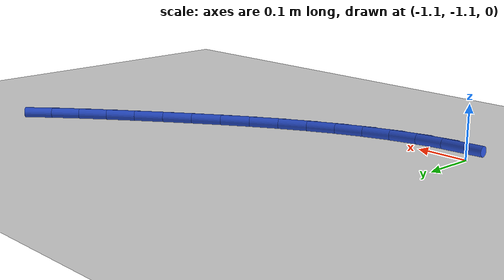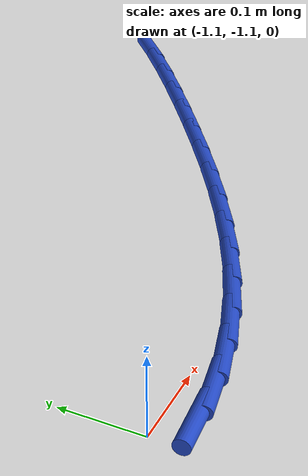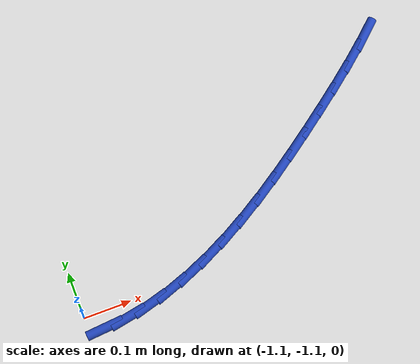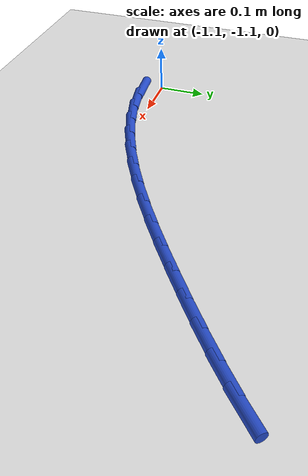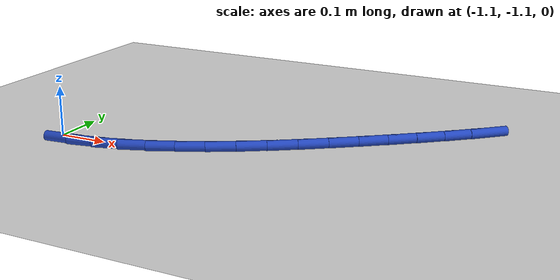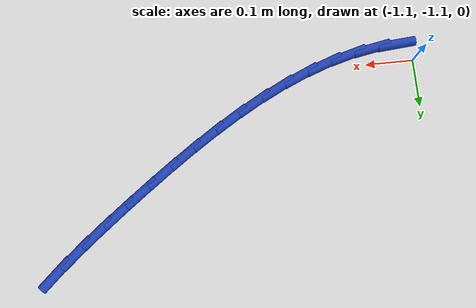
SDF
<sdf version="1.6">
 <world name="default">
  <model name="ground_plane">
   <static>1</static>
   <link name="link">
    <collision name="collision">
     <geometry><plane><normal>0 0 1</normal><size>100 100</size></plane></geometry>
     <surface><friction><ode><mu>100</mu><mu2>50</mu2></ode></friction></surface>
    </collision>
    <visual name="visual">
     <cast_shadows>0</cast_shadows>
     <geometry><plane><normal>0 0 1</normal><size>100 100</size></plane></geometry>
     <material>
      <script><uri>file://media/materials/scripts/gazebo.material</uri><name>Gazebo/WhiteGlow</name></script>
     </material>
    </visual>
   </link>
  </model>
  <model name="line">
   <link name="link_90">
    <pose>-1.0681190715513247 -1.1363492569885045 0.01 0 1.57 0.0856603087453602</pose>
    <collision name="collision">
     <geometry><cylinder><radius>0.01</radius><length>0.08</length></cylinder></geometry>
    </collision>
    <visual name="visual">
     <material>
      <script><name>Gazebo/Blue</name><uri>file://media/materials/scripts/gazebo.material</uri></script>
     </material>
     <geometry><cylinder><radius>0.01</radius><length>0.08</length></cylinder></geometry>
    </visual>
   </link>
   <link name="link_91">
    <pose>-1.0162148792671655 -1.1318922210687115 0.01 0 1.57 0.18759308360960497</pose>
    <collision name="collision">
     <geometry><cylinder><radius>0.01</radius><length>0.08</length></cylinder></geometry>
    </collision>
    <visual name="visual">
     <material>
      <script><name>Gazebo/Blue</name><uri>file://media/materials/scripts/gazebo.material</uri></script>
     </material>
     <geometry><cylinder><radius>0.01</radius><length>0.08</length></cylinder></geometry>
    </visual>
   </link>
   <link name="link_92">
    <pose>-0.9643338886728717 -1.1220439096033654 0.01 0 1.57 0.2770660141894901</pose>
    <collision name="collision">
     <geometry><cylinder><radius>0.01</radius><length>0.08</length></cylinder></geometry>
    </collision>
    <visual name="visual">
     <material>
      <script><name>Gazebo/Blue</name><uri>file://media/materials/scripts/gazebo.material</uri></script>
     </material>
     <geometry><cylinder><radius>0.01</radius><length>0.08</length></cylinder></geometry>
    </visual>
   </link>
   <link name="link_93">
    <pose>-0.9125690177223091 -1.107322994654457 0.01 0 1.57 0.3543660661757517</pose>
    <collision name="collision">
     <geometry><cylinder><radius>0.01</radius><length>0.08</length></cylinder></geometry>
    </collision>
    <visual name="visual">
     <material>
      <script><name>Gazebo/Blue</name><uri>file://media/materials/scripts/gazebo.material</uri></script>
     </material>
     <geometry><cylinder><radius>0.01</radius><length>0.08</length></cylinder></geometry>
    </visual>
   </link>
   <link name="link_94">
    <pose>-0.8610131843693452 -1.0882481482839768 0.01 0 1.57 0.4203501837310764</pose>
    <collision name="collision">
     <geometry><cylinder><radius>0.01</radius><length>0.08</length></cylinder></geometry>
    </collision>
    <visual name="visual">
     <material>
      <script><name>Gazebo/Blue</name><uri>file://media/materials/scripts/gazebo.material</uri></script>
     </material>
     <geometry><cylinder><radius>0.01</radius><length>0.08</length></cylinder></geometry>
    </visual>
   </link>
   <link name="link_95">
    <pose>-0.8097593065678449 -1.0653380425539154 0.01 0 1.57 0.47610845510683886</pose>
    <collision name="collision">
     <geometry><cylinder><radius>0.01</radius><length>0.08</length></cylinder></geometry>
    </collision>
    <visual name="visual">
     <material>
      <script><name>Gazebo/Blue</name><uri>file://media/materials/scripts/gazebo.material</uri></script>
     </material>
     <geometry><cylinder><radius>0.01</radius><length>0.08</length></cylinder></geometry>
    </visual>
   </link>
   <link name="link_96">
    <pose>-0.758900302271674 -1.039111349526262 0.01 0 1.57 0.5227463068699653</pose>
    <collision name="collision">
     <geometry><cylinder><radius>0.01</radius><length>0.08</length></cylinder></geometry>
    </collision>
    <visual name="visual">
     <material>
      <script><name>Gazebo/Blue</name><uri>file://media/materials/scripts/gazebo.material</uri></script>
     </material>
     <geometry><cylinder><radius>0.01</radius><length>0.08</length></cylinder></geometry>
    </visual>
   </link>
   <link name="link_97">
    <pose>-0.7085290894347004 -1.0100867412630086 0.01 0 1.57 0.5612636548398827</pose>
    <collision name="collision">
     <geometry><cylinder><radius>0.01</radius><length>0.08</length></cylinder></geometry>
    </collision>
    <visual name="visual">
     <material>
      <script><name>Gazebo/Blue</name><uri>file://media/materials/scripts/gazebo.material</uri></script>
     </material>
     <geometry><cylinder><radius>0.01</radius><length>0.08</length></cylinder></geometry>
    </visual>
   </link>
   <link name="link_98">
    <pose>-0.6587385860107889 -0.9787828898261444 0.01 0 1.57 0.5924972233606012</pose>
    <collision name="collision">
     <geometry><cylinder><radius>0.01</radius><length>0.08</length></cylinder></geometry>
    </collision>
    <visual name="visual">
     <material>
      <script><name>Gazebo/Blue</name><uri>file://media/materials/scripts/gazebo.material</uri></script>
     </material>
     <geometry><cylinder><radius>0.01</radius><length>0.08</length></cylinder></geometry>
    </visual>
   </link>
   <link name="link_99">
    <pose>-0.6096217099538058 -0.9457184672776601 0.01 0 1.57 0.6170976274664343</pose>
    <collision name="collision">
     <geometry><cylinder><radius>0.01</radius><length>0.08</length></cylinder></geometry>
    </collision>
    <visual name="visual">
     <material>
      <script><name>Gazebo/Blue</name><uri>file://media/materials/scripts/gazebo.material</uri></script>
     </material>
     <geometry><cylinder><radius>0.01</radius><length>0.08</length></cylinder></geometry>
    </visual>
   </link>
   <link name="link_100">
    <pose>-0.5612713792176169 -0.9114121456795458 0.01 0 1.57 0.6355216436513639</pose>
    <collision name="collision">
     <geometry><cylinder><radius>0.01</radius><length>0.08</length></cylinder></geometry>
    </collision>
    <visual name="visual">
     <material>
      <script><name>Gazebo/Blue</name><uri>file://media/materials/scripts/gazebo.material</uri></script>
     </material>
     <geometry><cylinder><radius>0.01</radius><length>0.08</length></cylinder></geometry>
    </visual>
   </link>
   <link name="link_101">
    <pose>-0.5137805117560893 -0.8763825970937922 0.01 0 1.57 0.648712057156303</pose>
    <collision name="collision">
     <geometry><cylinder><radius>0.01</radius><length>0.08</length></cylinder></geometry>
    </collision>
    <visual name="visual">
     <material>
      <script><name>Gazebo/Blue</name><uri>file://media/materials/scripts/gazebo.material</uri></script>
     </material>
     <geometry><cylinder><radius>0.01</radius><length>0.08</length></cylinder></geometry>
    </visual>
   </link>
   <link name="link_102">
    <pose>-0.4672487688930443 -0.8411034335699114 0.01 0 1.57 0.663723165899155</pose>
    <collision name="collision">
     <geometry><cylinder><radius>0.01</radius><length>0.08</length></cylinder></geometry>
    </collision>
    <visual name="visual">
     <material>
      <script><name>Gazebo/Blue</name><uri>file://media/materials/scripts/gazebo.material</uri></script>
     </material>
     <geometry><cylinder><radius>0.01</radius><length>0.08</length></cylinder></geometry>
    </visual>
   </link>
   <link name="link_103">
    <pose>-0.42184396219528114 -0.8055928790029495 0.01 0 1.57 0.6847813250448445</pose>
    <collision name="collision">
     <geometry><cylinder><radius>0.01</radius><length>0.08</length></cylinder></geometry>
    </collision>
    <visual name="visual">
     <material>
      <script><name>Gazebo/Blue</name><uri>file://media/materials/scripts/gazebo.material</uri></script>
     </material>
     <geometry><cylinder><radius>0.01</radius><length>0.08</length></cylinder></geometry>
    </visual>
   </link>
   <link name="link_104">
    <pose>-0.37777345102212007 -0.7696048941619151 0.01 0 1.57 0.712164386970695</pose>
    <collision name="collision">
     <geometry><cylinder><radius>0.01</radius><length>0.08</length></cylinder></geometry>
    </collision>
    <visual name="visual">
     <material>
      <script><name>Gazebo/Blue</name><uri>file://media/materials/scripts/gazebo.material</uri></script>
     </material>
     <geometry><cylinder><radius>0.01</radius><length>0.08</length></cylinder></geometry>
    </visual>
   </link>
   <link name="link_105">
    <pose>-0.33524508098321804 -0.7328901906323549 0.01 0 1.57 0.7460695513056024</pose>
    <collision name="collision">
     <geometry><cylinder><radius>0.01</radius><length>0.08</length></cylinder></geometry>
    </collision>
    <visual name="visual">
     <material>
      <script><name>Gazebo/Blue</name><uri>file://media/materials/scripts/gazebo.material</uri></script>
     </material>
     <geometry><cylinder><radius>0.01</radius><length>0.08</length></cylinder></geometry>
    </visual>
   </link>
  </model>
 </world>
</sdf>
